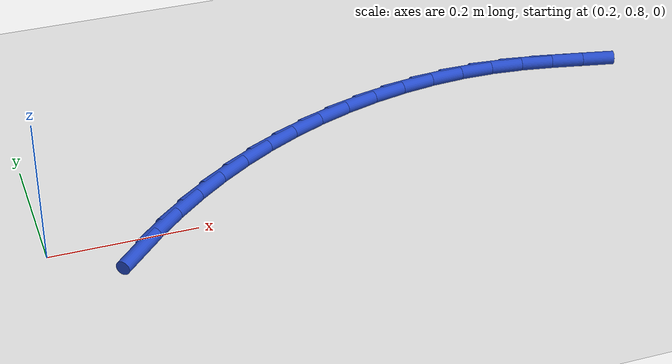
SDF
<sdf version="1.6">
 <world name="default">
  <model name="ground_plane">
   <static>1</static>
   <link name="link">
    <collision name="collision">
     <geometry><plane><normal>0 0 1</normal><size>100 100</size></plane></geometry>
     <surface><friction><ode><mu>100</mu><mu2>50</mu2></ode></friction></surface>
    </collision>
    <visual name="visual">
     <cast_shadows>0</cast_shadows>
     <geometry><plane><normal>0 0 1</normal><size>100 100</size></plane></geometry>
     <material>
      <script><uri>file://media/materials/scripts/gazebo.material</uri><name>Gazebo/WhiteGlow</name></script>
     </material>
    </visual>
   </link>
  </model>
  <model name="line">
   <link name="link_17">
    <pose>0.3123702709839696 0.7632867634430639 0.01 0 1.57 0.7990966143693009</pose>
    <collision name="collision">
     <geometry><cylinder><radius>0.01</radius><length>0.08</length></cylinder></geometry>
    </collision>
    <visual name="visual">
     <material>
      <script><name>Gazebo/Blue</name><uri>file://media/materials/scripts/gazebo.material</uri></script>
     </material>
     <geometry><cylinder><radius>0.01</radius><length>0.08</length></cylinder></geometry>
    </visual>
   </link>
   <link name="link_18">
    <pose>0.34706939136478876 0.7989497966274863 0.01 0 1.57 0.7488790799188343</pose>
    <collision name="collision">
     <geometry><cylinder><radius>0.01</radius><length>0.08</length></cylinder></geometry>
    </collision>
    <visual name="visual">
     <material>
      <script><name>Gazebo/Blue</name><uri>file://media/materials/scripts/gazebo.material</uri></script>
     </material>
     <geometry><cylinder><radius>0.01</radius><length>0.08</length></cylinder></geometry>
    </visual>
   </link>
   <link name="link_19">
    <pose>0.38344390531204403 0.8327600858663909 0.01 0 1.57 0.6965321284541816</pose>
    <collision name="collision">
     <geometry><cylinder><radius>0.01</radius><length>0.08</length></cylinder></geometry>
    </collision>
    <visual name="visual">
     <material>
      <script><name>Gazebo/Blue</name><uri>file://media/materials/scripts/gazebo.material</uri></script>
     </material>
     <geometry><cylinder><radius>0.01</radius><length>0.08</length></cylinder></geometry>
    </visual>
   </link>
   <link name="link_20">
    <pose>0.421480025146248 0.8645726395495559 0.01 0 1.57 0.6419975166842645</pose>
    <collision name="collision">
     <geometry><cylinder><radius>0.01</radius><length>0.08</length></cylinder></geometry>
    </collision>
    <visual name="visual">
     <material>
      <script><name>Gazebo/Blue</name><uri>file://media/materials/scripts/gazebo.material</uri></script>
     </material>
     <geometry><cylinder><radius>0.01</radius><length>0.08</length></cylinder></geometry>
    </visual>
   </link>
   <link name="link_21">
    <pose>0.46116396318791375 0.8942424660667603 0.01 0 1.57 0.5852630229832181</pose>
    <collision name="collision">
     <geometry><cylinder><radius>0.01</radius><length>0.08</length></cylinder></geometry>
    </collision>
    <visual name="visual">
     <material>
      <script><name>Gazebo/Blue</name><uri>file://media/materials/scripts/gazebo.material</uri></script>
     </material>
     <geometry><cylinder><radius>0.01</radius><length>0.08</length></cylinder></geometry>
    </visual>
   </link>
   <link name="link_22">
    <pose>0.5024819317575542 0.9216245738077831 0.01 0 1.57 0.5263717332748417</pose>
    <collision name="collision">
     <geometry><cylinder><radius>0.01</radius><length>0.08</length></cylinder></geometry>
    </collision>
    <visual name="visual">
     <material>
      <script><name>Gazebo/Blue</name><uri>file://media/materials/scripts/gazebo.material</uri></script>
     </material>
     <geometry><cylinder><radius>0.01</radius><length>0.08</length></cylinder></geometry>
    </visual>
   </link>
   <link name="link_23">
    <pose>0.545420143175682 0.9465739711624023 0.01 0 1.57 0.4654362565554381</pose>
    <collision name="collision">
     <geometry><cylinder><radius>0.01</radius><length>0.08</length></cylinder></geometry>
    </collision>
    <visual name="visual">
     <material>
      <script><name>Gazebo/Blue</name><uri>file://media/materials/scripts/gazebo.material</uri></script>
     </material>
     <geometry><cylinder><radius>0.01</radius><length>0.08</length></cylinder></geometry>
    </visual>
   </link>
   <link name="link_24">
    <pose>0.5899637902003093 0.9689454750341889 0.01 0 1.57 0.4030818393115089</pose>
    <collision name="collision">
     <geometry><cylinder><radius>0.01</radius><length>0.08</length></cylinder></geometry>
    </collision>
    <visual name="visual">
     <material>
      <script><name>Gazebo/Blue</name><uri>file://media/materials/scripts/gazebo.material</uri></script>
     </material>
     <geometry><cylinder><radius>0.01</radius><length>0.08</length></cylinder></geometry>
    </visual>
   </link>
   <link name="link_25">
    <pose>0.6359947874496205 0.9885745054389112 0.01 0 1.57 0.3397435695490179</pose>
    <collision name="collision">
     <geometry><cylinder><radius>0.01</radius><length>0.08</length></cylinder></geometry>
    </collision>
    <visual name="visual">
     <material>
      <script><name>Gazebo/Blue</name><uri>file://media/materials/scripts/gazebo.material</uri></script>
     </material>
     <geometry><cylinder><radius>0.01</radius><length>0.08</length></cylinder></geometry>
    </visual>
   </link>
   <link name="link_26">
    <pose>0.6832044559369886 1.0052606866007574 0.01 0 1.57 0.27460073581641886</pose>
    <collision name="collision">
     <geometry><cylinder><radius>0.01</radius><length>0.08</length></cylinder></geometry>
    </collision>
    <visual name="visual">
     <material>
      <script><name>Gazebo/Blue</name><uri>file://media/materials/scripts/gazebo.material</uri></script>
     </material>
     <geometry><cylinder><radius>0.01</radius><length>0.08</length></cylinder></geometry>
    </visual>
   </link>
   <link name="link_27">
    <pose>0.7312635511018416 1.018799780279594 0.01 0 1.57 0.20671852256041323</pose>
    <collision name="collision">
     <geometry><cylinder><radius>0.01</radius><length>0.08</length></cylinder></geometry>
    </collision>
    <visual name="visual">
     <material>
      <script><name>Gazebo/Blue</name><uri>file://media/materials/scripts/gazebo.material</uri></script>
     </material>
     <geometry><cylinder><radius>0.01</radius><length>0.08</length></cylinder></geometry>
    </visual>
   </link>
   <link name="link_28">
    <pose>0.7798428283836071 1.0289875482352857 0.01 0 1.57 0.13515972217466835</pose>
    <collision name="collision">
     <geometry><cylinder><radius>0.01</radius><length>0.08</length></cylinder></geometry>
    </collision>
    <visual name="visual">
     <material>
      <script><name>Gazebo/Blue</name><uri>file://media/materials/scripts/gazebo.material</uri></script>
     </material>
     <geometry><cylinder><radius>0.01</radius><length>0.08</length></cylinder></geometry>
    </visual>
   </link>
   <link name="link_29">
    <pose>0.8286130432217133 1.0356197522276989 0.01 0 1.57 0.05899559973866759</pose>
    <collision name="collision">
     <geometry><cylinder><radius>0.01</radius><length>0.08</length></cylinder></geometry>
    </collision>
    <visual name="visual">
     <material>
      <script><name>Gazebo/Blue</name><uri>file://media/materials/scripts/gazebo.material</uri></script>
     </material>
     <geometry><cylinder><radius>0.01</radius><length>0.08</length></cylinder></geometry>
    </visual>
   </link>
   <link name="link_30">
    <pose>0.877244951055587 1.0384921540166991 0.01 0 1.57 -0.022660985699172367</pose>
    <collision name="collision">
     <geometry><cylinder><radius>0.01</radius><length>0.08</length></cylinder></geometry>
    </collision>
    <visual name="visual">
     <material>
      <script><name>Gazebo/Blue</name><uri>file://media/materials/scripts/gazebo.material</uri></script>
     </material>
     <geometry><cylinder><radius>0.01</radius><length>0.08</length></cylinder></geometry>
    </visual>
   </link>
   <link name="link_31">
    <pose>0.9254093073246565 1.037400515362152 0.01 0 1.57 -0.10724344335077675</pose>
    <collision name="collision">
     <geometry><cylinder><radius>0.01</radius><length>0.08</length></cylinder></geometry>
    </collision>
    <visual name="visual">
     <material>
      <script><name>Gazebo/Blue</name><uri>file://media/materials/scripts/gazebo.material</uri></script>
     </material>
     <geometry><cylinder><radius>0.01</radius><length>0.08</length></cylinder></geometry>
    </visual>
   </link>
   <link name="link_32">
    <pose>0.9728544262518912 1.0322927406359885 0.01 0 1.57 -0.1718294851512073</pose>
    <collision name="collision">
     <geometry><cylinder><radius>0.01</radius><length>0.08</length></cylinder></geometry>
    </collision>
    <visual name="visual">
     <material>
      <script><name>Gazebo/Blue</name><uri>file://media/materials/scripts/gazebo.material</uri></script>
     </material>
     <geometry><cylinder><radius>0.01</radius><length>0.08</length></cylinder></geometry>
    </visual>
   </link>
   <link name="link_33">
    <pose>1.0198488756852047 1.024137285871992 0.01 0 1.57 -0.2057585692204956</pose>
    <collision name="collision">
     <geometry><cylinder><radius>0.01</radius><length>0.08</length></cylinder></geometry>
    </collision>
    <visual name="visual">
     <material>
      <script><name>Gazebo/Blue</name><uri>file://media/materials/scripts/gazebo.material</uri></script>
     </material>
     <geometry><cylinder><radius>0.01</radius><length>0.08</length></cylinder></geometry>
    </visual>
   </link>
   <link name="link_34">
    <pose>1.0668751819172775 1.0143223170990465 0.01 0 1.57 -0.2090328938851627</pose>
    <collision name="collision">
     <geometry><cylinder><radius>0.01</radius><length>0.08</length></cylinder></geometry>
    </collision>
    <visual name="visual">
     <material>
      <script><name>Gazebo/Blue</name><uri>file://media/materials/scripts/gazebo.material</uri></script>
     </material>
     <geometry><cylinder><radius>0.01</radius><length>0.08</length></cylinder></geometry>
    </visual>
   </link>
  </model>
 </world>
</sdf>
